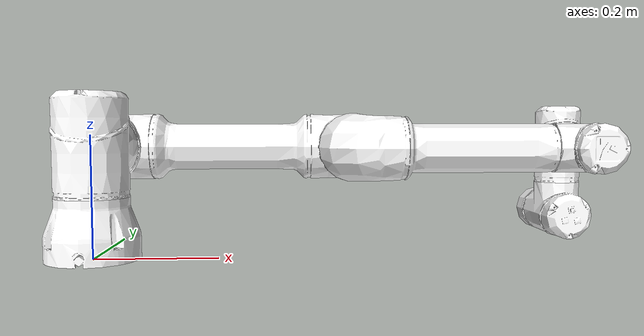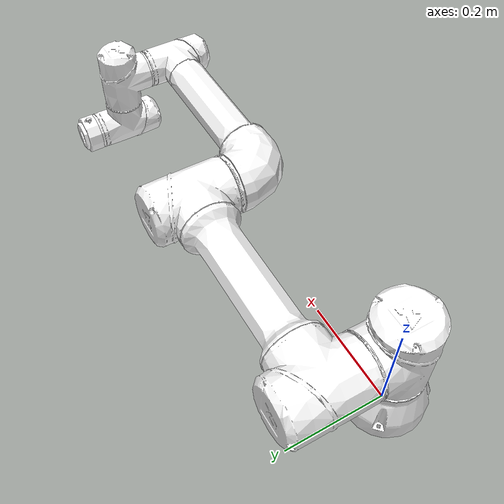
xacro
<?xml version="1.0"?>
<robot xmlns:xacro="http://www.ros.org/wiki/xacro" name="c5a_description">

    <!-- Used for fixing robot to Gazebo 'base_link' -->
    <link name="world"/>
    <joint name="fixed" type="fixed">
        <parent link="world"/>
        <child link="base_link"/>
    </joint>

    <!-- Import c5a_description urdf file -->
    <xacro:include filename="$(find gbt_description)/urdf/GBT_C5A_gazebo.urdf" />

    <!-- Set Gazebo properties for certain links. -->
    <gazebo reference="base_link">
        <self_collide>false</self_collide>
        <gravity>false</gravity>
    </gazebo>
    <gazebo reference="link1">
        <self_collide>false</self_collide>
        <gravity>false</gravity>
    </gazebo>
    <gazebo reference="link2">
        <gravity>false</gravity>
    </gazebo>
    <gazebo reference="link3">
        <gravity>false</gravity>
    </gazebo>
    <gazebo reference="link4">
        <gravity>false</gravity>
    </gazebo>
    <gazebo reference="link5">
        <gravity>false</gravity>
    </gazebo>
    <gazebo reference="link6">
        <gravity>false</gravity>
    </gazebo>

    <gazebo>
        <is_static>true</is_static>
        <self_collide>true</self_collide>
    </gazebo>

    <!-- ros2_control -->
    <ros2_control name="GazeboSystem" type="system">
        <hardware>
            <plugin>gazebo_ros2_control/GazeboSystem</plugin>
        </hardware>
        <joint name="joint1">
            <command_interface name="position"/>
            <state_interface name="position">
                <param name="initial_value">0</param>
            </state_interface>
            <state_interface name="velocity"/>
        </joint>
        <joint name="joint2">
            <command_interface name="position"/>
            <state_interface name="position">
                <param name="initial_value">0</param>
            </state_interface>
            <state_interface name="velocity"/>
        </joint>
        <joint name="joint3">
            <command_interface name="position"/>
            <state_interface name="position">
                <param name="initial_value">0</param>
            </state_interface>
            <state_interface name="velocity"/>
        </joint>
        <joint name="joint4">
            <command_interface name="position"/>
            <state_interface name="position">
                <param name="initial_value">0</param>
            </state_interface>
            <state_interface name="velocity"/>
        </joint>
        <joint name="joint5">
            <command_interface name="position"/>
            <state_interface name="position">
                <param name="initial_value">0</param>
            </state_interface>
            <state_interface name="velocity"/>
        </joint>
        <joint name="joint6">
            <command_interface name="position"/>
            <state_interface name="position">
                <param name="initial_value">0</param>
            </state_interface>
            <state_interface name="velocity"/>
        </joint>
    </ros2_control>

    <!-- load ros2_control plugin-->
    <gazebo>
        <plugin filename="libgazebo_ros2_control.so" name="gazebo_ros2_control">
            <parameters>$(find c5a_moveit_config)/config/ros2_controllers.yaml</parameters>
            <robot_param>robot_description</robot_param>
            <robot_param_node>robot_state_publisher</robot_param_node>
        </plugin>
    </gazebo>

</robot>

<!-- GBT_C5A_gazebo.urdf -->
<robot
  name="GBT_C5A">
  <link
    name="base_link">
    <inertial>
      <origin
        xyz="-5.18937271871501E-06 -0.00981292786589054 0.0491107475197807"
        rpy="0 0 0" />
      <mass
        value="9.16039502558691" />
      <inertia
        ixx="0.0419459273106292"
        ixy="1.03238231774288E-05"
        ixz="-1.20730153954149E-06"
        iyy="0.0160794902925854"
        iyz="-0.00415210475211165"
        izz="0.0465551463891972" />
    </inertial>
    <visual>
      <origin
        xyz="0 0 0"
        rpy="0 0 1.5708" />
      <geometry>
        <mesh
          filename="file://$(find gbt_description)/meshes/visual/c5a/c5a_base.dae" />
      </geometry>
      <material
        name="">
        <color
          rgba="1 1 1 1" />
      </material>
    </visual>
    <collision>
      <origin
        xyz="0 0 0"
        rpy="0 0 1.5708" />
      <geometry>
        <mesh
          filename="file://$(find gbt_description)/meshes/collision/c5a/c5a_base.STL" />
      </geometry>
    </collision>
  </link>
  <link
    name="link1">
    <inertial>
      <origin
        xyz="-4.1533E-07 0.0039849 0.082573"
        rpy="0 0 0" />
      <mass
        value="15.175" />
      <inertia
        ixx="0.047238"
        ixy="1.1824E-07"
        ixz="3.158E-07"
        iyy="0.045941"
        iyz="-9.9968E-05"
        izz="0.029087" />
    </inertial>
    <visual>
      <origin
        xyz="0 0 0.084"
        rpy="0 0 0" />
      <geometry>
        <mesh
          filename="file://$(find gbt_description)/meshes/visual/c5a/c5a_1.dae" />
      </geometry>
      <material
        name="">
        <color
          rgba="1 1 1 1" />
      </material>
    </visual>
    <collision>
      <origin
        xyz="0 0 0"
        rpy="0 0 1.5708" />
      <geometry>
        <mesh
          filename="file://$(find gbt_description)/meshes/collision/c5a/c5a_1.STL" />
      </geometry>
    </collision>
  </link>
  <joint
    name="joint1"
    type="revolute">
    <origin
      xyz="0 0 0.094"
      rpy="0 0 0" />
    <parent
      link="base_link" />
    <child
      link="link1" />
    <axis
      xyz="0 0 1" />
    <limit
      lower="-6.283185307179"
      upper="6.283185307179"
      effort="100"
      velocity="1" />
  </joint>
  <link
    name="link2">
    <inertial>
      <origin
        xyz="0.21249 -1.5735E-06 0.083052"
        rpy="0 0 0" />
      <mass
        value="45.747" />
      <inertia
        ixx="0.10914"
        ixy="4.6633E-05"
        ixz="2.2941E-06"
        iyy="1.56"
        iyz="3.3978E-06"
        izz="1.5237" />
    </inertial>
    <visual>
      <origin
        xyz="0 0 0"
        rpy="1.5708 0 0" />
      <geometry>
        <mesh
          filename="file://$(find gbt_description)/meshes/visual/c5a/c5a_2.dae" />
      </geometry>
      <material
        name="">
        <color
          rgba="1 1 1 1" />
      </material>
    </visual>
    <collision>
      <origin
        xyz="0 0 0"
        rpy="1.5708 0 0" />
      <geometry>
        <mesh
          filename="file://$(find gbt_description)/meshes/collision/c5a/c5a_2.STL" />
      </geometry>
    </collision>
  </link>
  <joint
    name="joint2"
    type="revolute">
    <origin
      xyz="0 0.063 0.084"
      rpy="-1.5708 0 0" />
    <parent
      link="link1" />
    <child
      link="link2" />
    <axis
      xyz="0 0 -1" />
    <limit
      lower="-1.483529864195"
      upper="4.625122517784"
      effort="100"
      velocity="1" />
  </joint>
  <link
    name="link3">
    <inertial>
      <origin
        xyz="-0.17704 2.1965E-06 0.057289"
        rpy="0 0 0" />
      <mass
        value="25.388" />
      <inertia
        ixx="0.034609"
        ixy="2.0726E-06"
        ixz="0.017944"
        iyy="0.57881"
        iyz="-1.6149E-06"
        izz="0.57165" />
    </inertial>
    <visual>
      <origin
        xyz="0 0 0"
        rpy="-1.570796326794 0 3.1415926536 " />
      <geometry>
        <mesh
          filename="file://$(find gbt_description)/meshes/visual/c5a/c5a_3.dae" />
      </geometry>
      <material
        name="">
        <color
          rgba="1 1 1 1" />
      </material>
    </visual>
    <collision>
      <origin
        xyz="0 0 0"
        rpy="-1.570796326794 0 3.1415926536 " />
      <geometry>
        <mesh
          filename="file://$(find gbt_description)/meshes/collision/c5a/c5a_3.STL" />
      </geometry>
    </collision>
  </link>
  <joint
    name="joint3"
    type="revolute">
    <origin
      xyz="0.425 0 0"
      rpy="-3.1416 0 3.1416" />
    <parent
      link="link2" />
    <child
      link="link3" />
    <axis
      xyz="0 0 1" />
    <limit
      lower="-2.809980095710"
      upper="2.809980095710"
      effort="100"
      velocity="1" />
  </joint>
  <link
    name="link4">
    <inertial>
      <origin
        xyz="1.4636E-07 0.0036936 0.046819"
        rpy="0 0 0" />
      <mass
        value="5.9625" />
      <inertia
        ixx="0.01117"
        ixy="6.5877E-08"
        ixz="-9.2842E-08"
        iyy="0.0057359"
        iyz="-0.00011921"
        izz="0.010395" />
    </inertial>
    <visual>
      <origin
        xyz="0 0 -0.0069"
        rpy="1.570796326794 0 0" />
      <geometry>
        <mesh
          filename="file://$(find gbt_description)/meshes/visual/c5a/c5a_4.dae" />
      </geometry>
      <material
        name="">
        <color
          rgba="1 1 1 1" />
      </material>
    </visual>
    <collision>
      <origin
        xyz="0 0 -0.0069"
        rpy="1.570796326794 0 0" />
      <geometry>
        <mesh
          filename="file://$(find gbt_description)/meshes/collision/c5a/c5a_4.STL" />
      </geometry>
    </collision>
  </link>
  <joint
    name="joint4"
    type="revolute">
    <origin
      xyz="-0.385 0 -0.0083"
      rpy="-3.1416 0 3.1416" />
    <parent
      link="link3" />
    <child
      link="link4" />
    <axis
      xyz="0 0 -1" />
    <limit
      lower="-1.483529864195"
      upper="4.625122517784"
      effort="100"
      velocity="1" />
  </joint>
  <link
    name="link5">
    <inertial>
      <origin
        xyz="2.8003E-07 -0.00083604 -0.04715"
        rpy="0 0 0" />
      <mass
        value="6.3692" />
      <inertia
        ixx="0.013244"
        ixy="1.2468E-07"
        ixz="-2.2495E-08"
        iyy="0.0060649"
        iyz="-1.9528E-05"
        izz="0.012458" />
    </inertial>
    <visual>
      <origin
        xyz="0 0 0.006"
        rpy="0 0 0" />
      <geometry>
        <mesh
          filename="file://$(find gbt_description)/meshes/visual/c5a/c5a_5.dae" />
      </geometry>
      <material
        name="">
        <color
          rgba="1 1 1 1" />
      </material>
    </visual>
    <collision>
      <origin
        xyz="0 0 0.006"
        rpy="0 0 0" />
      <geometry>
        <mesh
          filename="file://$(find gbt_description)/meshes/collision/c5a/c5a_5.STL" />
      </geometry>
    </collision>
  </link>
  <joint
    name="joint5"
    type="revolute">
    <origin
      xyz="0 0.0713 0.052"
      rpy="1.5708 0 0" />
    <parent
      link="link4" />
    <child
      link="link5" />
    <axis
      xyz="0 0 -1" />
    <limit
      lower="-6.283185307179"
      upper="6.283185307179"
      effort="100"
      velocity="1" />
  </joint>
  <link
    name="link6">
    <inertial>
      <origin
        xyz="1.3558E-09 0.00017433 0.012497"
        rpy="0 0 0" />
      <mass
        value="1.0139" />
      <inertia
        ixx="0.00046196"
        ixy="1.0902E-10"
        ixz="2.167E-10"
        iyy="0.00046763"
        iyz="-6.5718E-08"
        izz="0.00080289" />
    </inertial>
    <visual>
      <origin
        xyz="0 0 0"
        rpy="1.5708 0 0" />
      <geometry>
        <mesh
          filename="file://$(find gbt_description)/meshes/visual/c5a/c5a_6.dae" />
      </geometry>
      <material
        name="">
        <color
          rgba="1 1 1 1" />
      </material>
    </visual>
    <collision>
      <origin
        xyz="0 0 0"
        rpy="1.5708 0 0" />
      <geometry>
        <mesh
          filename="file://$(find gbt_description)/meshes/collision/c5a/c5a_6.STL" />
      </geometry>
    </collision>
  </link>
  <joint
    name="joint6"
    type="revolute">
    <origin
      xyz="0 0.0713 -0.052"
      rpy="-1.5708 0 0" />
    <parent
      link="link5" />
    <child
      link="link6" />
    <axis
      xyz="0 0 1" />
    <limit
      lower="-6.283185307179"
      upper="6.283185307179"
      effort="100"
      velocity="1" />
  </joint>
</robot>
